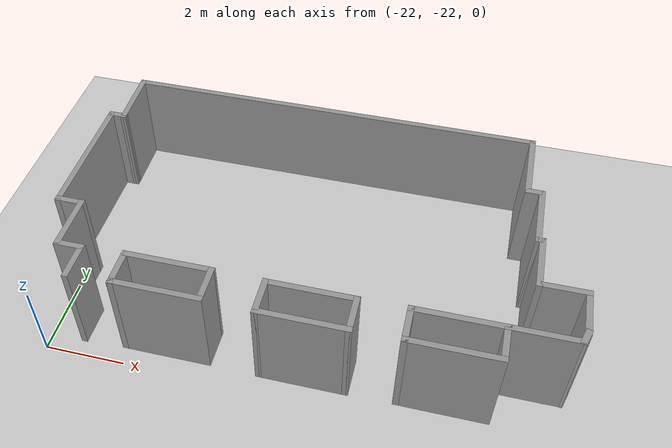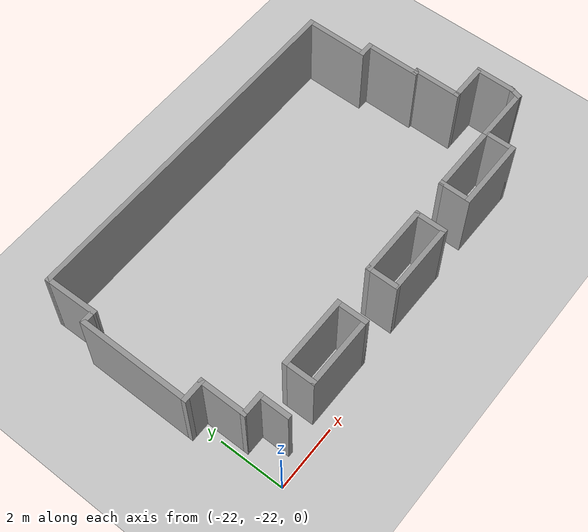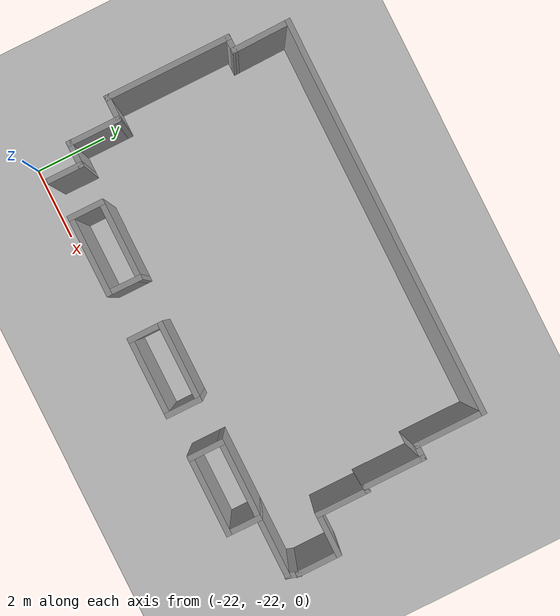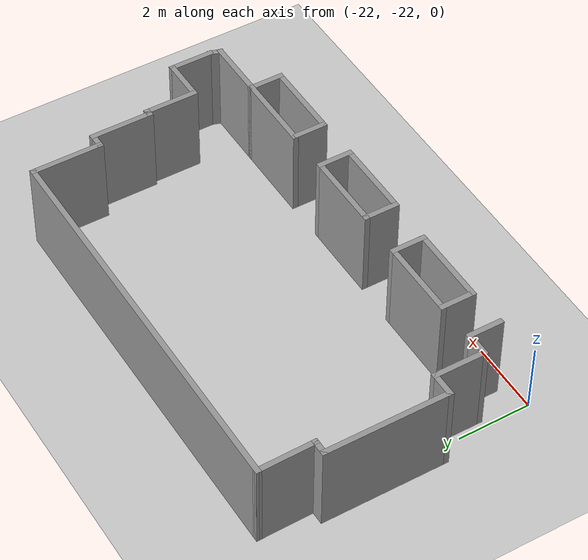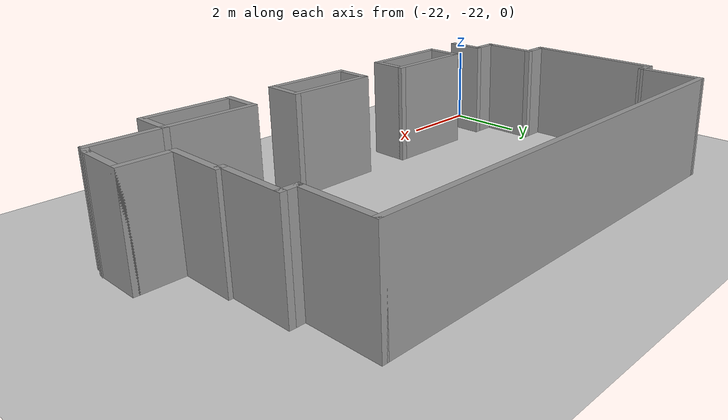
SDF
<?xml version="1.0" ?>
<sdf version="1.4">
	<world name="default">
		<gui fullscreen='0'>
      <camera name='user_camera'>
        <pose frame=''>8.18313 -3.28715 9.77259 0 0.855643 2.7162</pose>
        <view_controller>orbit</view_controller>
        <projection_type>perspective</projection_type>
      </camera>
    </gui>
		<physics type="ode">
			<gravity>0 0 -9.8</gravity>
			<ode>
				<solver>
					<type>quick</type>
					<iters>40</iters>
					<sor>1.0</sor>
				</solver>
				<constraints>
					<cfm>0.0</cfm>
					<erp>0.2</erp>
					<contact_max_correcting_vel>100.0</contact_max_correcting_vel>
					<contact_surface_layer>0.0</contact_surface_layer>
				</constraints>
			</ode>
			<max_step_size>0.001</max_step_size>
		</physics>
		<!-- A global light source -->
		<include>
			<uri>model://sun</uri>
		</include>
		<!-- A ground plane -->
		<include>
			<uri>model://ground_plane</uri>
		</include>
		<include>
			<uri>model://kavezo</uri>
			<pose>-16 -18 0.001 0 0 0</pose>
		</include>
	</world>
</sdf>

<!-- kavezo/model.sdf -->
<sdf version='1.6'>
  <model name='kavezo'>
    <pose frame=''>0.271665 2.11309 0 0 -0 0</pose>
    <link name='Wall_0'>
      <collision name='Wall_0_Collision'>
        <geometry>
          <box>
            <size>11 0.15 2.5</size>
          </box>
        </geometry>
        <pose frame=''>0 0 1.25 0 -0 0</pose>
      </collision>
      <visual name='Wall_0_Visual'>
        <pose frame=''>0 0 1.25 0 -0 0</pose>
        <geometry>
          <box>
            <size>11 0.15 2.5</size>
          </box>
        </geometry>
        <material>
          <script>
            <uri>file://media/materials/scripts/gazebo.material</uri>
            <name>Gazebo/Grey</name>
          </script>
          <ambient>1 1 1 1</ambient>
        </material>
      </visual>
      <pose frame=''>-0.623111 3.53655 0 0 -0 0</pose>
    </link>
    <link name='Wall_1'>
      <collision name='Wall_1_Collision'>
        <geometry>
          <box>
            <size>2 0.15 2.5</size>
          </box>
        </geometry>
        <pose frame=''>0 0 1.25 0 -0 0</pose>
      </collision>
      <visual name='Wall_1_Visual'>
        <pose frame=''>0 0 1.25 0 -0 0</pose>
        <geometry>
          <box>
            <size>2 0.15 2.5</size>
          </box>
        </geometry>
        <material>
          <script>
            <uri>file://media/materials/scripts/gazebo.material</uri>
            <name>Gazebo/Grey</name>
          </script>
          <ambient>1 1 1 1</ambient>
        </material>
      </visual>
      <pose frame=''>4.80189 2.61155 0 0 0 -1.5708</pose>
    </link>
    <link name='Wall_10'>
      <collision name='Wall_10_Collision'>
        <geometry>
          <box>
            <size>0.75 0.15 2.5</size>
          </box>
        </geometry>
        <pose frame=''>0 0 1.25 0 -0 0</pose>
      </collision>
      <visual name='Wall_10_Visual'>
        <pose frame=''>0 0 1.25 0 -0 0</pose>
        <geometry>
          <box>
            <size>0.75 0.15 2.5</size>
          </box>
        </geometry>
        <material>
          <script>
            <uri>file://media/materials/scripts/gazebo.material</uri>
            <name>Gazebo/Grey</name>
          </script>
          <ambient>1 1 1 1</ambient>
        </material>
      </visual>
      <pose frame=''>-5.4703 -2.6879 0 0 -0 3.14159</pose>
    </link>
    <link name='Wall_11'>
      <collision name='Wall_11_Collision'>
        <geometry>
          <box>
            <size>1.5 0.15 2.5</size>
          </box>
        </geometry>
        <pose frame=''>0 0 1.25 0 -0 0</pose>
      </collision>
      <visual name='Wall_11_Visual'>
        <pose frame=''>0 0 1.25 0 -0 0</pose>
        <geometry>
          <box>
            <size>1.5 0.15 2.5</size>
          </box>
        </geometry>
        <material>
          <script>
            <uri>file://media/materials/scripts/gazebo.material</uri>
            <name>Gazebo/Grey</name>
          </script>
          <ambient>1 1 1 1</ambient>
        </material>
      </visual>
      <pose frame=''>-5.7703 -2.0129 0 0 -0 1.5708</pose>
    </link>
    <link name='Wall_12'>
      <collision name='Wall_12_Collision'>
        <geometry>
          <box>
            <size>0.75 0.15 2.5</size>
          </box>
        </geometry>
        <pose frame=''>0 0 1.25 0 -0 0</pose>
      </collision>
      <visual name='Wall_12_Visual'>
        <pose frame=''>0 0 1.25 0 -0 0</pose>
        <geometry>
          <box>
            <size>0.75 0.15 2.5</size>
          </box>
        </geometry>
        <material>
          <script>
            <uri>file://media/materials/scripts/gazebo.material</uri>
            <name>Gazebo/Grey</name>
          </script>
          <ambient>1 1 1 1</ambient>
        </material>
      </visual>
      <pose frame=''>-6.0703 -1.3379 0 0 -0 3.14159</pose>
    </link>
    <link name='Wall_13'>
      <collision name='Wall_13_Collision'>
        <geometry>
          <box>
            <size>3.5 0.15 2.5</size>
          </box>
        </geometry>
        <pose frame=''>0 0 1.25 0 -0 0</pose>
      </collision>
      <visual name='Wall_13_Visual'>
        <pose frame=''>0 0 1.25 0 -0 0</pose>
        <geometry>
          <box>
            <size>3.5 0.15 2.5</size>
          </box>
        </geometry>
        <material>
          <script>
            <uri>file://media/materials/scripts/gazebo.material</uri>
            <name>Gazebo/Grey</name>
          </script>
          <ambient>1 1 1 1</ambient>
        </material>
      </visual>
      <pose frame=''>-6.3703 0.337099 0 0 -0 1.5708</pose>
    </link>
    <link name='Wall_14'>
      <collision name='Wall_14_Collision'>
        <geometry>
          <box>
            <size>0.5 0.15 2.5</size>
          </box>
        </geometry>
        <pose frame=''>0 0 1.25 0 -0 0</pose>
      </collision>
      <visual name='Wall_14_Visual'>
        <pose frame=''>0 0 1.25 0 -0 0</pose>
        <geometry>
          <box>
            <size>0.5 0.15 2.5</size>
          </box>
        </geometry>
        <material>
          <script>
            <uri>file://media/materials/scripts/gazebo.material</uri>
            <name>Gazebo/Grey</name>
          </script>
          <ambient>1 1 1 1</ambient>
        </material>
      </visual>
      <pose frame=''>-6.1953 2.0121 0 0 -0 0</pose>
    </link>
    <link name='Wall_15'>
      <collision name='Wall_15_Collision'>
        <geometry>
          <box>
            <size>1.6747 0.15 2.5</size>
          </box>
        </geometry>
        <pose frame=''>0 0 1.25 0 -0 0</pose>
      </collision>
      <visual name='Wall_15_Visual'>
        <pose frame=''>0 0 1.25 0 -0 0</pose>
        <geometry>
          <box>
            <size>1.6747 0.15 2.5</size>
          </box>
        </geometry>
        <material>
          <script>
            <uri>file://media/materials/scripts/gazebo.material</uri>
            <name>Gazebo/Grey</name>
          </script>
          <ambient>1 1 1 1</ambient>
        </material>
      </visual>
      <pose frame=''>-6.03421 2.77432 0 0 -0 1.58903</pose>
    </link>
    <link name='Wall_17'>
      <collision name='Wall_17_Collision'>
        <geometry>
          <box>
            <size>1 0.15 2.5</size>
          </box>
        </geometry>
        <pose frame=''>0 0 1.25 0 -0 0</pose>
      </collision>
      <visual name='Wall_17_Visual'>
        <pose frame=''>0 0 1.25 0 -0 0</pose>
        <geometry>
          <box>
            <size>1 0.15 2.5</size>
          </box>
        </geometry>
        <material>
          <script>
            <uri>file://media/materials/scripts/gazebo.material</uri>
            <name>Gazebo/Grey</name>
          </script>
          <ambient>1 1 1 1</ambient>
        </material>
      </visual>
      <pose frame=''>-4.1063 -3.0597 0 0 0 -1.5708</pose>
    </link>
    <link name='Wall_18'>
      <collision name='Wall_18_Collision'>
        <geometry>
          <box>
            <size>2.25 0.15 2.5</size>
          </box>
        </geometry>
        <pose frame=''>0 0 1.25 0 -0 0</pose>
      </collision>
      <visual name='Wall_18_Visual'>
        <pose frame=''>0 0 1.25 0 -0 0</pose>
        <geometry>
          <box>
            <size>2.25 0.15 2.5</size>
          </box>
        </geometry>
        <material>
          <script>
            <uri>file://media/materials/scripts/gazebo.material</uri>
            <name>Gazebo/Grey</name>
          </script>
          <ambient>1 1 1 1</ambient>
        </material>
      </visual>
      <pose frame=''>-3.0563 -3.4847 0 0 -0 0</pose>
    </link>
    <link name='Wall_19'>
      <collision name='Wall_19_Collision'>
        <geometry>
          <box>
            <size>1 0.15 2.5</size>
          </box>
        </geometry>
        <pose frame=''>0 0 1.25 0 -0 0</pose>
      </collision>
      <visual name='Wall_19_Visual'>
        <pose frame=''>0 0 1.25 0 -0 0</pose>
        <geometry>
          <box>
            <size>1 0.15 2.5</size>
          </box>
        </geometry>
        <material>
          <script>
            <uri>file://media/materials/scripts/gazebo.material</uri>
            <name>Gazebo/Grey</name>
          </script>
          <ambient>1 1 1 1</ambient>
        </material>
      </visual>
      <pose frame=''>-2.0063 -3.0597 0 0 -0 1.5708</pose>
    </link>
    <link name='Wall_2'>
      <collision name='Wall_2_Collision'>
        <geometry>
          <box>
            <size>0.5 0.15 2.5</size>
          </box>
        </geometry>
        <pose frame=''>0 0 1.25 0 -0 0</pose>
      </collision>
      <visual name='Wall_2_Visual'>
        <pose frame=''>0 0 1.25 0 -0 0</pose>
        <geometry>
          <box>
            <size>0.5 0.15 2.5</size>
          </box>
        </geometry>
        <material>
          <script>
            <uri>file://media/materials/scripts/gazebo.material</uri>
            <name>Gazebo/Grey</name>
          </script>
          <ambient>1 1 1 1</ambient>
        </material>
      </visual>
      <pose frame=''>4.97689 1.68654 0 0 -0 0</pose>
    </link>
    <link name='Wall_20'>
      <collision name='Wall_20_Collision'>
        <geometry>
          <box>
            <size>2.25 0.15 2.5</size>
          </box>
        </geometry>
        <pose frame=''>0 0 1.25 0 -0 0</pose>
      </collision>
      <visual name='Wall_20_Visual'>
        <pose frame=''>0 0 1.25 0 -0 0</pose>
        <geometry>
          <box>
            <size>2.25 0.15 2.5</size>
          </box>
        </geometry>
        <material>
          <script>
            <uri>file://media/materials/scripts/gazebo.material</uri>
            <name>Gazebo/Grey</name>
          </script>
          <ambient>1 1 1 1</ambient>
        </material>
      </visual>
      <pose frame=''>-3.0563 -2.6347 0 0 -0 3.14159</pose>
    </link>
    <link name='Wall_22'>
      <collision name='Wall_22_Collision'>
        <geometry>
          <box>
            <size>1 0.15 2.5</size>
          </box>
        </geometry>
        <pose frame=''>0 0 1.25 0 -0 0</pose>
      </collision>
      <visual name='Wall_22_Visual'>
        <pose frame=''>0 0 1.25 0 -0 0</pose>
        <geometry>
          <box>
            <size>1 0.15 2.5</size>
          </box>
        </geometry>
        <material>
          <script>
            <uri>file://media/materials/scripts/gazebo.material</uri>
            <name>Gazebo/Grey</name>
          </script>
          <ambient>1 1 1 1</ambient>
        </material>
      </visual>
      <pose frame=''>1.37335 -3.08751 0 0 -0 1.5708</pose>
    </link>
    <link name='Wall_23'>
      <collision name='Wall_23_Collision'>
        <geometry>
          <box>
            <size>2.25 0.15 2.5</size>
          </box>
        </geometry>
        <pose frame=''>0 0 1.25 0 -0 0</pose>
      </collision>
      <visual name='Wall_23_Visual'>
        <pose frame=''>0 0 1.25 0 -0 0</pose>
        <geometry>
          <box>
            <size>2.25 0.15 2.5</size>
          </box>
        </geometry>
        <material>
          <script>
            <uri>file://media/materials/scripts/gazebo.material</uri>
            <name>Gazebo/Grey</name>
          </script>
          <ambient>1 1 1 1</ambient>
        </material>
      </visual>
      <pose frame=''>0.323345 -2.66251 0 0 -0 3.14159</pose>
    </link>
    <link name='Wall_24'>
      <collision name='Wall_24_Collision'>
        <geometry>
          <box>
            <size>1 0.15 2.5</size>
          </box>
        </geometry>
        <pose frame=''>0 0 1.25 0 -0 0</pose>
      </collision>
      <visual name='Wall_24_Visual'>
        <pose frame=''>0 0 1.25 0 -0 0</pose>
        <geometry>
          <box>
            <size>1 0.15 2.5</size>
          </box>
        </geometry>
        <material>
          <script>
            <uri>file://media/materials/scripts/gazebo.material</uri>
            <name>Gazebo/Grey</name>
          </script>
          <ambient>1 1 1 1</ambient>
        </material>
      </visual>
      <pose frame=''>-0.726655 -3.08751 0 0 0 -1.5708</pose>
    </link>
    <link name='Wall_25'>
      <collision name='Wall_25_Collision'>
        <geometry>
          <box>
            <size>2.25 0.15 2.5</size>
          </box>
        </geometry>
        <pose frame=''>0 0 1.25 0 -0 0</pose>
      </collision>
      <visual name='Wall_25_Visual'>
        <pose frame=''>0 0 1.25 0 -0 0</pose>
        <geometry>
          <box>
            <size>2.25 0.15 2.5</size>
          </box>
        </geometry>
        <material>
          <script>
            <uri>file://media/materials/scripts/gazebo.material</uri>
            <name>Gazebo/Grey</name>
          </script>
          <ambient>1 1 1 1</ambient>
        </material>
      </visual>
      <pose frame=''>0.323345 -3.51251 0 0 -0 0</pose>
    </link>
    <link name='Wall_27'>
      <collision name='Wall_27_Collision'>
        <geometry>
          <box>
            <size>1 0.15 2.5</size>
          </box>
        </geometry>
        <pose frame=''>0 0 1.25 0 -0 0</pose>
      </collision>
      <visual name='Wall_27_Visual'>
        <pose frame=''>0 0 1.25 0 -0 0</pose>
        <geometry>
          <box>
            <size>1 0.15 2.5</size>
          </box>
        </geometry>
        <material>
          <script>
            <uri>file://media/materials/scripts/gazebo.material</uri>
            <name>Gazebo/Grey</name>
          </script>
          <ambient>1 1 1 1</ambient>
        </material>
      </visual>
      <pose frame=''>2.57035 -3.0597 0 0 0 -1.5708</pose>
    </link>
    <link name='Wall_28'>
      <collision name='Wall_28_Collision'>
        <geometry>
          <box>
            <size>2.25 0.15 2.5</size>
          </box>
        </geometry>
        <pose frame=''>0 0 1.25 0 -0 0</pose>
      </collision>
      <visual name='Wall_28_Visual'>
        <pose frame=''>0 0 1.25 0 -0 0</pose>
        <geometry>
          <box>
            <size>2.25 0.15 2.5</size>
          </box>
        </geometry>
        <material>
          <script>
            <uri>file://media/materials/scripts/gazebo.material</uri>
            <name>Gazebo/Grey</name>
          </script>
          <ambient>1 1 1 1</ambient>
        </material>
      </visual>
      <pose frame=''>3.62035 -3.4847 0 0 -0 0</pose>
    </link>
    <link name='Wall_29'>
      <collision name='Wall_29_Collision'>
        <geometry>
          <box>
            <size>1 0.15 2.5</size>
          </box>
        </geometry>
        <pose frame=''>0 0 1.25 0 -0 0</pose>
      </collision>
      <visual name='Wall_29_Visual'>
        <pose frame=''>0 0 1.25 0 -0 0</pose>
        <geometry>
          <box>
            <size>1 0.15 2.5</size>
          </box>
        </geometry>
        <material>
          <script>
            <uri>file://media/materials/scripts/gazebo.material</uri>
            <name>Gazebo/Grey</name>
          </script>
          <ambient>1 1 1 1</ambient>
        </material>
      </visual>
      <pose frame=''>4.67035 -3.0597 0 0 -0 1.5708</pose>
    </link>
    <link name='Wall_3'>
      <collision name='Wall_3_Collision'>
        <geometry>
          <box>
            <size>1.75 0.15 2.5</size>
          </box>
        </geometry>
        <pose frame=''>0 0 1.25 0 -0 0</pose>
      </collision>
      <visual name='Wall_3_Visual'>
        <pose frame=''>0 0 1.25 0 -0 0</pose>
        <geometry>
          <box>
            <size>1.75 0.15 2.5</size>
          </box>
        </geometry>
        <material>
          <script>
            <uri>file://media/materials/scripts/gazebo.material</uri>
            <name>Gazebo/Grey</name>
          </script>
          <ambient>1 1 1 1</ambient>
        </material>
      </visual>
      <pose frame=''>5.15189 0.886546 0 0 0 -1.5708</pose>
    </link>
    <link name='Wall_32'>
      <collision name='Wall_32_Collision'>
        <geometry>
          <box>
            <size>2.25 0.15 2.5</size>
          </box>
        </geometry>
        <pose frame=''>0 0 1.25 0 -0 0</pose>
      </collision>
      <visual name='Wall_32_Visual'>
        <pose frame=''>0 0 1.25 0 -0 0</pose>
        <geometry>
          <box>
            <size>2.25 0.15 2.5</size>
          </box>
        </geometry>
        <material>
          <script>
            <uri>file://media/materials/scripts/gazebo.material</uri>
            <name>Gazebo/Grey</name>
          </script>
          <ambient>1 1 1 1</ambient>
        </material>
      </visual>
      <pose frame=''>3.62035 -2.6347 0 0 -0 3.14159</pose>
    </link>
    <link name='Wall_34'>
      <collision name='Wall_34_Collision'>
        <geometry>
          <box>
            <size>1.75 0.15 2.5</size>
          </box>
        </geometry>
        <pose frame=''>0 0 1.25 0 -0 0</pose>
      </collision>
      <visual name='Wall_34_Visual'>
        <pose frame=''>0 0 1.25 0 -0 0</pose>
        <geometry>
          <box>
            <size>1.75 0.15 2.5</size>
          </box>
        </geometry>
        <material>
          <script>
            <uri>file://media/materials/scripts/gazebo.material</uri>
            <name>Gazebo/Grey</name>
          </script>
          <ambient>1 1 1 1</ambient>
        </material>
      </visual>
      <pose frame=''>5.47035 -2.6347 0 0 -0 0</pose>
    </link>
    <link name='Wall_35'>
      <collision name='Wall_35_Collision'>
        <geometry>
          <box>
            <size>0.433236 0.15 2.5</size>
          </box>
        </geometry>
        <pose frame=''>0 0 1.25 0 -0 0</pose>
      </collision>
      <visual name='Wall_35_Visual'>
        <pose frame=''>0 0 1.25 0 -0 0</pose>
        <geometry>
          <box>
            <size>0.433236 0.15 2.5</size>
          </box>
        </geometry>
        <material>
          <script>
            <uri>file://media/materials/scripts/gazebo.material</uri>
            <name>Gazebo/Grey</name>
          </script>
          <ambient>1 1 1 1</ambient>
        </material>
      </visual>
      <pose frame=''>6.31112 -2.49908 0 0 -0 1.27879</pose>
    </link>
    <link name='Wall_37'>
      <collision name='Wall_37_Collision'>
        <geometry>
          <box>
            <size>1 0.15 2.5</size>
          </box>
        </geometry>
        <pose frame=''>0 0 1.25 0 -0 0</pose>
      </collision>
      <visual name='Wall_37_Visual'>
        <pose frame=''>0 0 1.25 0 -0 0</pose>
        <geometry>
          <box>
            <size>1 0.15 2.5</size>
          </box>
        </geometry>
        <material>
          <script>
            <uri>file://media/materials/scripts/gazebo.material</uri>
            <name>Gazebo/Grey</name>
          </script>
          <ambient>1 1 1 1</ambient>
        </material>
      </visual>
      <pose frame=''>-5.1703 -3.1129 0 0 0 -1.5708</pose>
    </link>
    <link name='Wall_4'>
      <collision name='Wall_4_Collision'>
        <geometry>
          <box>
            <size>0.25 0.15 2.5</size>
          </box>
        </geometry>
        <pose frame=''>0 0 1.25 0 -0 0</pose>
      </collision>
      <visual name='Wall_4_Visual'>
        <pose frame=''>0 0 1.25 0 -0 0</pose>
        <geometry>
          <box>
            <size>0.25 0.15 2.5</size>
          </box>
        </geometry>
        <material>
          <script>
            <uri>file://media/materials/scripts/gazebo.material</uri>
            <name>Gazebo/Grey</name>
          </script>
          <ambient>1 1 1 1</ambient>
        </material>
      </visual>
      <pose frame=''>5.20189 0.086546 0 0 -0 0</pose>
    </link>
    <link name='Wall_5'>
      <collision name='Wall_5_Collision'>
        <geometry>
          <box>
            <size>1.5 0.15 2.5</size>
          </box>
        </geometry>
        <pose frame=''>0 0 1.25 0 -0 0</pose>
      </collision>
      <visual name='Wall_5_Visual'>
        <pose frame=''>0 0 1.25 0 -0 0</pose>
        <geometry>
          <box>
            <size>1.5 0.15 2.5</size>
          </box>
        </geometry>
        <material>
          <script>
            <uri>file://media/materials/scripts/gazebo.material</uri>
            <name>Gazebo/Grey</name>
          </script>
          <ambient>1 1 1 1</ambient>
        </material>
      </visual>
      <pose frame=''>5.25189 -0.588454 0 0 0 -1.5708</pose>
    </link>
    <link name='Wall_6'>
      <collision name='Wall_6_Collision'>
        <geometry>
          <box>
            <size>1.25 0.15 2.5</size>
          </box>
        </geometry>
        <pose frame=''>0 0 1.25 0 -0 0</pose>
      </collision>
      <visual name='Wall_6_Visual'>
        <pose frame=''>0 0 1.25 0 -0 0</pose>
        <geometry>
          <box>
            <size>1.25 0.15 2.5</size>
          </box>
        </geometry>
        <material>
          <script>
            <uri>file://media/materials/scripts/gazebo.material</uri>
            <name>Gazebo/Grey</name>
          </script>
          <ambient>1 1 1 1</ambient>
        </material>
      </visual>
      <pose frame=''>5.80189 -1.26345 0 0 -0 0</pose>
    </link>
    <link name='Wall_7'>
      <collision name='Wall_7_Collision'>
        <geometry>
          <box>
            <size>1.25 0.15 2.5</size>
          </box>
        </geometry>
        <pose frame=''>0 0 1.25 0 -0 0</pose>
      </collision>
      <visual name='Wall_7_Visual'>
        <pose frame=''>0 0 1.25 0 -0 0</pose>
        <geometry>
          <box>
            <size>1.25 0.15 2.5</size>
          </box>
        </geometry>
        <material>
          <script>
            <uri>file://media/materials/scripts/gazebo.material</uri>
            <name>Gazebo/Grey</name>
          </script>
          <ambient>1 1 1 1</ambient>
        </material>
      </visual>
      <pose frame=''>6.35189 -1.81345 0 0 0 -1.5708</pose>
    </link>
    <static>1</static>
  </model>
</sdf>
